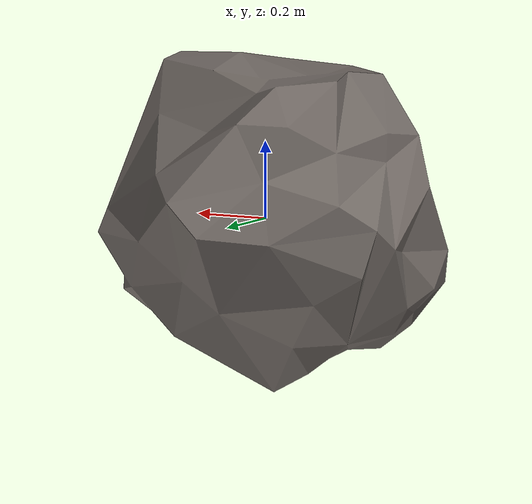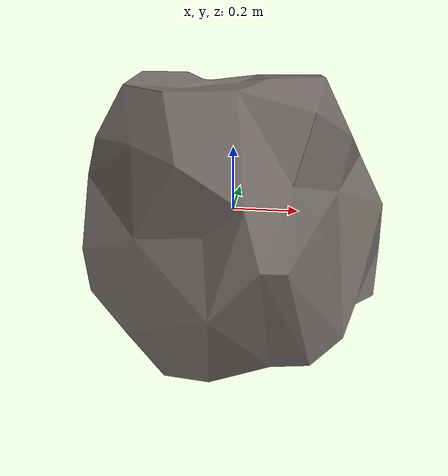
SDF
<?xml version="1.0" ?>
<sdf version="1.6">
  <model name="falling_rock2">
    <link name="base_link">
      <inertial>
        <pose>-0.014732 -0.014451 0.003710 0 0 0</pose>
        <mass>646.508</mass>
        <inertia>
          <ixx>49.62</ixx>
          <ixy>4.08</ixy>
          <ixz>-0.324</ixz>
          <iyy>46.472</iyy>
          <iyz>-3.926</iyz>
          <izz>51.062</izz>
        </inertia>
      </inertial>
      <collision name="collision">
        <geometry>
          <mesh>
            <uri>meshes/FallingRock02_Collider.dae</uri>
          </mesh>
        </geometry>
      </collision>

      <visual name="visual">
        <geometry>
          <mesh>
            <uri>meshes/FallingRock02.dae</uri>
          </mesh>
        </geometry>
        <!-- Keep material local-only to avoid unresolved model:// URIs -->
        <material>
          <ambient>0.38 0.35 0.33 1.0</ambient>
          <diffuse>0.45 0.42 0.40 1.0</diffuse>
          <specular>0.08 0.08 0.08 1.0</specular>
        </material>
      </visual>
    </link>
  </model>
</sdf>
